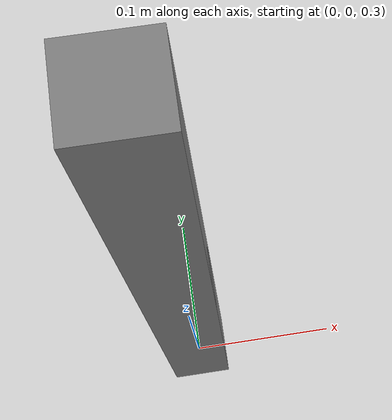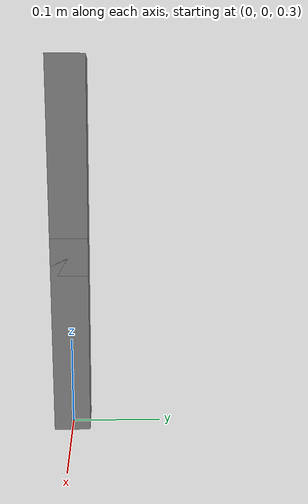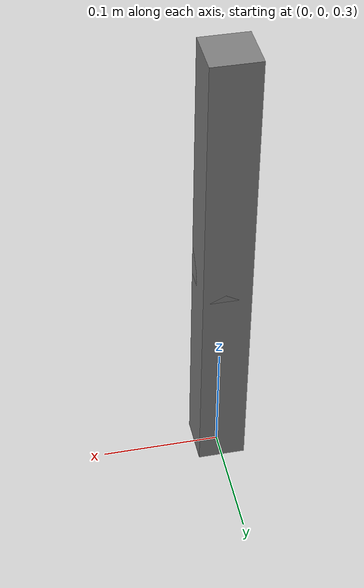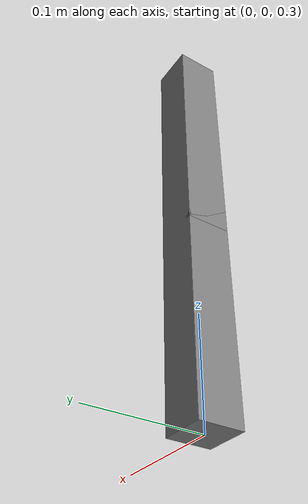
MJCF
<mujoco model="broken_prismatic_fixed">
  <worldbody>
    <body name="rail" pos="0 0 0.5">
      <geom name="rail_geom" type="box" size="0.02 0.02 0.2" mass="1.0"/>
      <body name="slider" pos="0 0 0">
        <joint name="slide" type="slide" axis="0 0 1" range="-0.1 0.1"/>
        <geom name="slider_geom" type="box" size="0.02 0.02 0.02" mass="0.2"/>
      </body>
    </body>
  </worldbody>
</mujoco>
